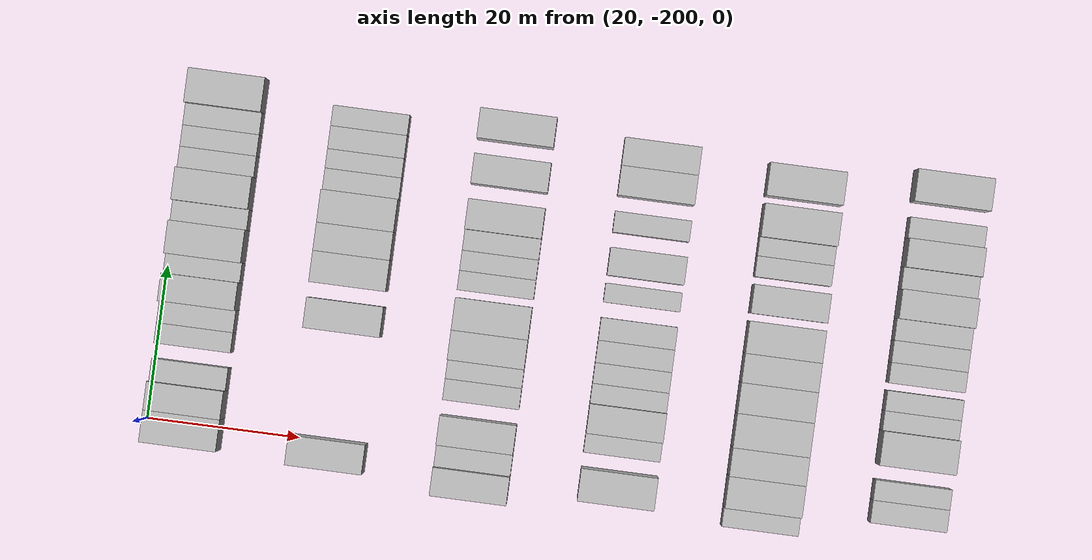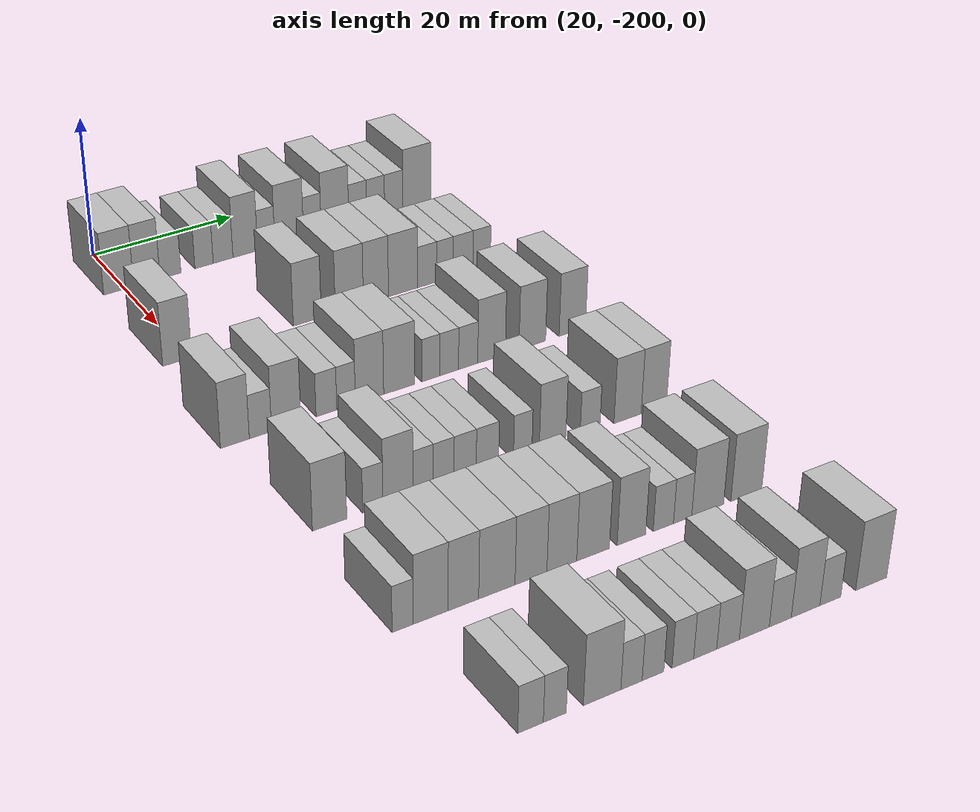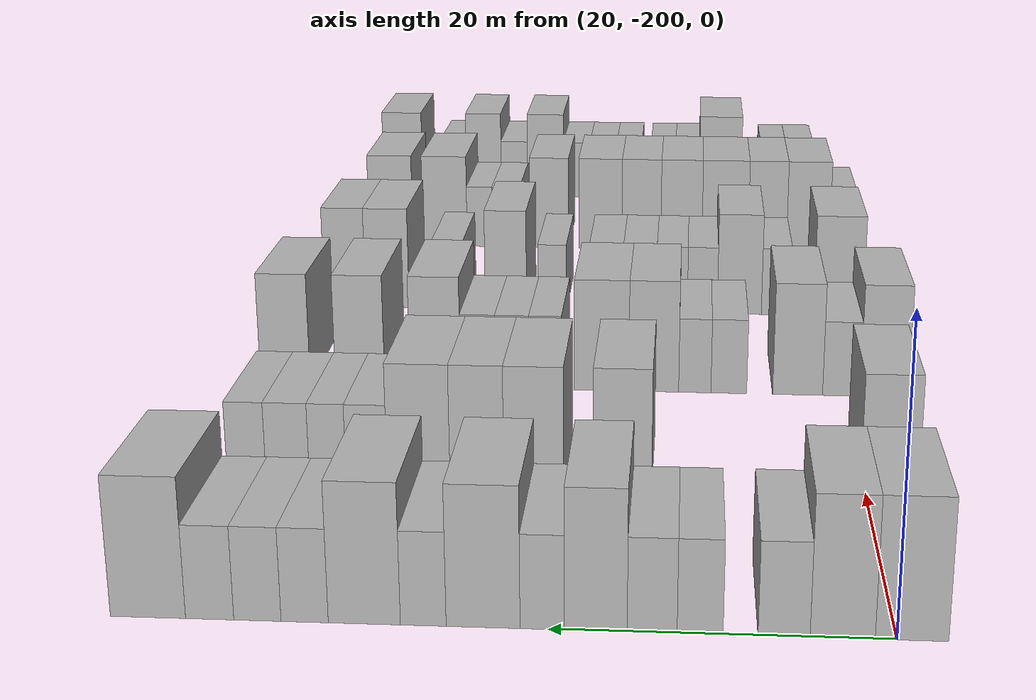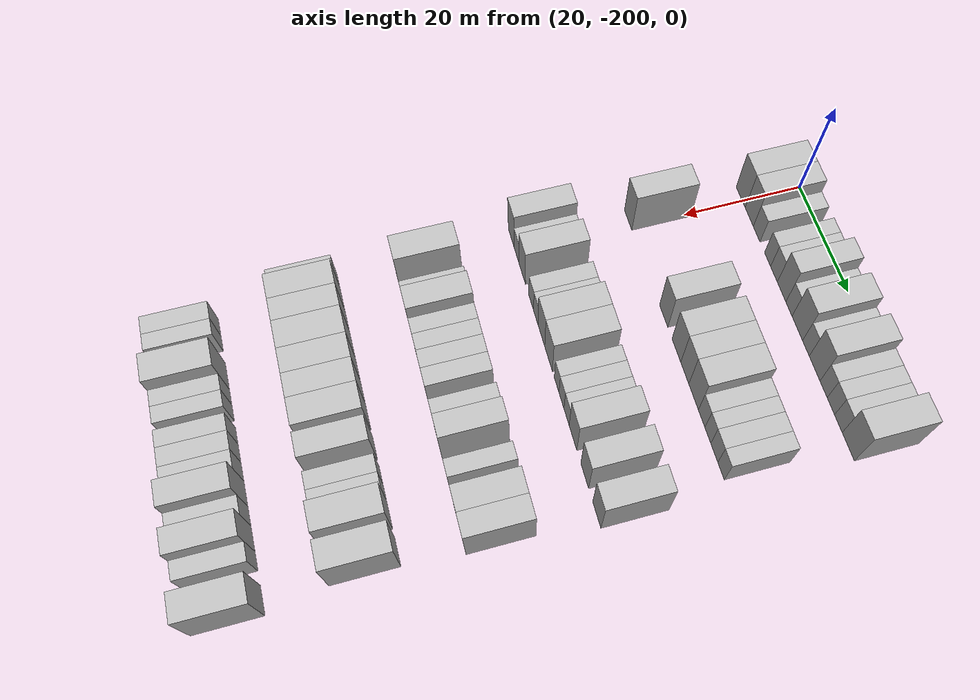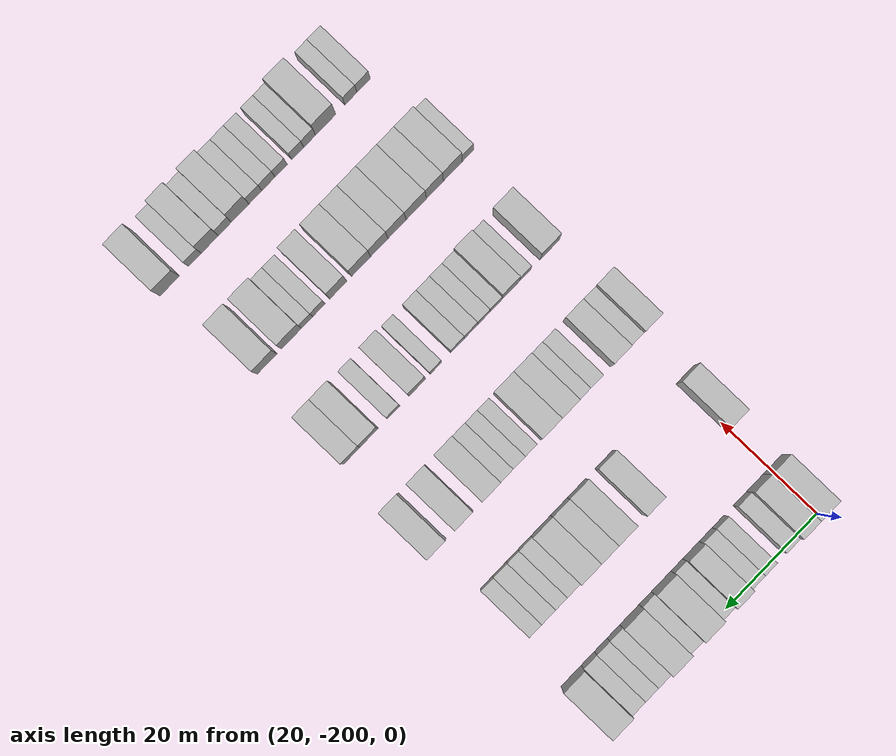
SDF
<sdf version="1.6">
 <world name="default">
  <model name="building_38">
   <static>1</static>
   <pose>25.0000 -200.8313 0 0.000000 0.000000 0.000000</pose>
   <link name="link">
    <pose>0 0 4.50 0 0 0</pose>
    <collision name="collision"><geometry><box><size>10.0000 4.1680 9.0000</size></box></geometry></collision>
    <visual name="visual">
     <cast_shadows>0</cast_shadows>
     <geometry><box><size>10.0000 4.1680 9.0000</size></box></geometry>
     <material>
      <script>
       <uri>model://HANNAS_wall/materials/scripts</uri>
       <uri>model://HANNAS_wall/materials/textures</uri>
       <name>vrc/HANNAS_wall</name>
      </script>
     </material>
    </visual>
   </link>
  </model>
  <model name="building_39">
   <static>1</static>
   <pose>25.0000 -196.8950 0 0.000000 0.000000 0.000000</pose>
   <link name="link">
    <pose>0 0 4.50 0 0 0</pose>
    <collision name="collision"><geometry><box><size>10.0000 3.7047 9.0000</size></box></geometry></collision>
    <visual name="visual">
     <cast_shadows>0</cast_shadows>
     <geometry><box><size>10.0000 3.7047 9.0000</size></box></geometry>
     <material>
      <script>
       <uri>model://HANNAS_wall/materials/scripts</uri>
       <uri>model://HANNAS_wall/materials/textures</uri>
       <name>vrc/HANNAS_wall</name>
      </script>
     </material>
    </visual>
   </link>
  </model>
  <model name="building_40">
   <static>1</static>
   <pose>25.0000 -193.5563 0 0.000000 0.000000 0.000000</pose>
   <link name="link">
    <pose>0 0 3.00 0 0 0</pose>
    <collision name="collision"><geometry><box><size>10.0000 2.9726 6.0000</size></box></geometry></collision>
    <visual name="visual">
     <cast_shadows>0</cast_shadows>
     <geometry><box><size>10.0000 2.9726 6.0000</size></box></geometry>
     <material>
      <script>
       <uri>model://HANNAS_wall/materials/scripts</uri>
       <uri>model://HANNAS_wall/materials/textures</uri>
       <name>vrc/HANNAS_wall</name>
      </script>
     </material>
    </visual>
   </link>
  </model>
  <model name="building_41">
   <static>1</static>
   <pose>25.0000 -188.7504 0 0.000000 0.000000 0.000000</pose>
   <link name="link">
    <pose>0 0 3.00 0 0 0</pose>
    <collision name="collision"><geometry><box><size>10.0000 2.6392 6.0000</size></box></geometry></collision>
    <visual name="visual">
     <cast_shadows>0</cast_shadows>
     <geometry><box><size>10.0000 2.6392 6.0000</size></box></geometry>
     <material>
      <script>
       <uri>model://HANNAS_wall/materials/scripts</uri>
       <uri>model://HANNAS_wall/materials/textures</uri>
       <name>vrc/HANNAS_wall</name>
      </script>
     </material>
    </visual>
   </link>
  </model>
  <model name="building_42">
   <static>1</static>
   <pose>25.0000 -185.9956 0 0.000000 0.000000 0.000000</pose>
   <link name="link">
    <pose>0 0 3.00 0 0 0</pose>
    <collision name="collision"><geometry><box><size>10.0000 2.8704 6.0000</size></box></geometry></collision>
    <visual name="visual">
     <cast_shadows>0</cast_shadows>
     <geometry><box><size>10.0000 2.8704 6.0000</size></box></geometry>
     <material>
      <script>
       <uri>model://HANNAS_wall/materials/scripts</uri>
       <uri>model://HANNAS_wall/materials/textures</uri>
       <name>vrc/HANNAS_wall</name>
      </script>
     </material>
    </visual>
   </link>
  </model>
  <model name="building_43">
   <static>1</static>
   <pose>25.0000 -182.7446 0 0.000000 0.000000 0.000000</pose>
   <link name="link">
    <pose>0 0 4.50 0 0 0</pose>
    <collision name="collision"><geometry><box><size>10.0000 3.6316 9.0000</size></box></geometry></collision>
    <visual name="visual">
     <cast_shadows>0</cast_shadows>
     <geometry><box><size>10.0000 3.6316 9.0000</size></box></geometry>
     <material>
      <script>
       <uri>model://HANNAS_wall/materials/scripts</uri>
       <uri>model://HANNAS_wall/materials/textures</uri>
       <name>vrc/HANNAS_wall</name>
      </script>
     </material>
    </visual>
   </link>
  </model>
  <model name="building_44">
   <static>1</static>
   <pose>25.0000 -179.6459 0 0.000000 0.000000 0.000000</pose>
   <link name="link">
    <pose>0 0 3.00 0 0 0</pose>
    <collision name="collision"><geometry><box><size>10.0000 2.5658 6.0000</size></box></geometry></collision>
    <visual name="visual">
     <cast_shadows>0</cast_shadows>
     <geometry><box><size>10.0000 2.5658 6.0000</size></box></geometry>
     <material>
      <script>
       <uri>model://HANNAS_wall/materials/scripts</uri>
       <uri>model://HANNAS_wall/materials/textures</uri>
       <name>vrc/HANNAS_wall</name>
      </script>
     </material>
    </visual>
   </link>
  </model>
  <model name="building_45">
   <static>1</static>
   <pose>25.0000 -176.2125 0 0.000000 0.000000 0.000000</pose>
   <link name="link">
    <pose>0 0 4.50 0 0 0</pose>
    <collision name="collision"><geometry><box><size>10.0000 4.3010 9.0000</size></box></geometry></collision>
    <visual name="visual">
     <cast_shadows>0</cast_shadows>
     <geometry><box><size>10.0000 4.3010 9.0000</size></box></geometry>
     <material>
      <script>
       <uri>model://HANNAS_wall/materials/scripts</uri>
       <uri>model://HANNAS_wall/materials/textures</uri>
       <name>vrc/HANNAS_wall</name>
      </script>
     </material>
    </visual>
   </link>
  </model>
  <model name="building_46">
   <static>1</static>
   <pose>25.0000 -172.7263 0 0.000000 0.000000 0.000000</pose>
   <link name="link">
    <pose>0 0 3.00 0 0 0</pose>
    <collision name="collision"><geometry><box><size>10.0000 2.6714 6.0000</size></box></geometry></collision>
    <visual name="visual">
     <cast_shadows>0</cast_shadows>
     <geometry><box><size>10.0000 2.6714 6.0000</size></box></geometry>
     <material>
      <script>
       <uri>model://HANNAS_wall/materials/scripts</uri>
       <uri>model://HANNAS_wall/materials/textures</uri>
       <name>vrc/HANNAS_wall</name>
      </script>
     </material>
    </visual>
   </link>
  </model>
  <model name="building_47">
   <static>1</static>
   <pose>25.0000 -169.2752 0 0.000000 0.000000 0.000000</pose>
   <link name="link">
    <pose>0 0 4.50 0 0 0</pose>
    <collision name="collision"><geometry><box><size>10.0000 4.2307 9.0000</size></box></geometry></collision>
    <visual name="visual">
     <cast_shadows>0</cast_shadows>
     <geometry><box><size>10.0000 4.2307 9.0000</size></box></geometry>
     <material>
      <script>
       <uri>model://HANNAS_wall/materials/scripts</uri>
       <uri>model://HANNAS_wall/materials/textures</uri>
       <name>vrc/HANNAS_wall</name>
      </script>
     </material>
    </visual>
   </link>
  </model>
  <model name="building_48">
   <static>1</static>
   <pose>25.0000 -165.7712 0 0.000000 0.000000 0.000000</pose>
   <link name="link">
    <pose>0 0 3.00 0 0 0</pose>
    <collision name="collision"><geometry><box><size>10.0000 2.7773 6.0000</size></box></geometry></collision>
    <visual name="visual">
     <cast_shadows>0</cast_shadows>
     <geometry><box><size>10.0000 2.7773 6.0000</size></box></geometry>
     <material>
      <script>
       <uri>model://HANNAS_wall/materials/scripts</uri>
       <uri>model://HANNAS_wall/materials/textures</uri>
       <name>vrc/HANNAS_wall</name>
      </script>
     </material>
    </visual>
   </link>
  </model>
  <model name="building_49">
   <static>1</static>
   <pose>25.0000 -162.9861 0 0.000000 0.000000 0.000000</pose>
   <link name="link">
    <pose>0 0 3.00 0 0 0</pose>
    <collision name="collision"><geometry><box><size>10.0000 2.7928 6.0000</size></box></geometry></collision>
    <visual name="visual">
     <cast_shadows>0</cast_shadows>
     <geometry><box><size>10.0000 2.7928 6.0000</size></box></geometry>
     <material>
      <script>
       <uri>model://HANNAS_wall/materials/scripts</uri>
       <uri>model://HANNAS_wall/materials/textures</uri>
       <name>vrc/HANNAS_wall</name>
      </script>
     </material>
    </visual>
   </link>
  </model>
  <model name="building_50">
   <static>1</static>
   <pose>25.0000 -160.1606 0 0.000000 0.000000 0.000000</pose>
   <link name="link">
    <pose>0 0 3.00 0 0 0</pose>
    <collision name="collision"><geometry><box><size>10.0000 2.8582 6.0000</size></box></geometry></collision>
    <visual name="visual">
     <cast_shadows>0</cast_shadows>
     <geometry><box><size>10.0000 2.8582 6.0000</size></box></geometry>
     <material>
      <script>
       <uri>model://HANNAS_wall/materials/scripts</uri>
       <uri>model://HANNAS_wall/materials/textures</uri>
       <name>vrc/HANNAS_wall</name>
      </script>
     </material>
    </visual>
   </link>
  </model>
  <model name="building_51">
   <static>1</static>
   <pose>25.0000 -156.4963 0 0.000000 0.000000 0.000000</pose>
   <link name="link">
    <pose>0 0 4.50 0 0 0</pose>
    <collision name="collision"><geometry><box><size>10.0000 4.4705 9.0000</size></box></geometry></collision>
    <visual name="visual">
     <cast_shadows>0</cast_shadows>
     <geometry><box><size>10.0000 4.4705 9.0000</size></box></geometry>
     <material>
      <script>
       <uri>model://HANNAS_wall/materials/scripts</uri>
       <uri>model://HANNAS_wall/materials/textures</uri>
       <name>vrc/HANNAS_wall</name>
      </script>
     </material>
    </visual>
   </link>
  </model>
  <model name="building_222">
   <static>1</static>
   <pose>44.0000 -201.4409 0 0.000000 0.000000 0.000000</pose>
   <link name="link">
    <pose>0 0 4.50 0 0 0</pose>
    <collision name="collision"><geometry><box><size>10.0000 3.8786 9.0000</size></box></geometry></collision>
    <visual name="visual">
     <cast_shadows>0</cast_shadows>
     <geometry><box><size>10.0000 3.8786 9.0000</size></box></geometry>
     <material>
      <script>
       <uri>model://HANNAS_wall/materials/scripts</uri>
       <uri>model://HANNAS_wall/materials/textures</uri>
       <name>vrc/HANNAS_wall</name>
      </script>
     </material>
    </visual>
   </link>
  </model>
  <model name="building_223">
   <static>1</static>
   <pose>44.0000 -183.5485 0 0.000000 0.000000 0.000000</pose>
   <link name="link">
    <pose>0 0 4.50 0 0 0</pose>
    <collision name="collision"><geometry><box><size>10.0000 3.9687 9.0000</size></box></geometry></collision>
    <visual name="visual">
     <cast_shadows>0</cast_shadows>
     <geometry><box><size>10.0000 3.9687 9.0000</size></box></geometry>
     <material>
      <script>
       <uri>model://HANNAS_wall/materials/scripts</uri>
       <uri>model://HANNAS_wall/materials/textures</uri>
       <name>vrc/HANNAS_wall</name>
      </script>
     </material>
    </visual>
   </link>
  </model>
  <model name="building_224">
   <static>1</static>
   <pose>44.0000 -177.5372 0 0.000000 0.000000 0.000000</pose>
   <link name="link">
    <pose>0 0 4.50 0 0 0</pose>
    <collision name="collision"><geometry><box><size>10.0000 4.0538 9.0000</size></box></geometry></collision>
    <visual name="visual">
     <cast_shadows>0</cast_shadows>
     <geometry><box><size>10.0000 4.0538 9.0000</size></box></geometry>
     <material>
      <script>
       <uri>model://HANNAS_wall/materials/scripts</uri>
       <uri>model://HANNAS_wall/materials/textures</uri>
       <name>vrc/HANNAS_wall</name>
      </script>
     </material>
    </visual>
   </link>
  </model>
  <model name="building_225">
   <static>1</static>
   <pose>44.0000 -173.6752 0 0.000000 0.000000 0.000000</pose>
   <link name="link">
    <pose>0 0 4.50 0 0 0</pose>
    <collision name="collision"><geometry><box><size>10.0000 3.6703 9.0000</size></box></geometry></collision>
    <visual name="visual">
     <cast_shadows>0</cast_shadows>
     <geometry><box><size>10.0000 3.6703 9.0000</size></box></geometry>
     <material>
      <script>
       <uri>model://HANNAS_wall/materials/scripts</uri>
       <uri>model://HANNAS_wall/materials/textures</uri>
       <name>vrc/HANNAS_wall</name>
      </script>
     </material>
    </visual>
   </link>
  </model>
  <model name="building_226">
   <static>1</static>
   <pose>44.0000 -169.6925 0 0.000000 0.000000 0.000000</pose>
   <link name="link">
    <pose>0 0 4.50 0 0 0</pose>
    <collision name="collision"><geometry><box><size>10.0000 4.2952 9.0000</size></box></geometry></collision>
    <visual name="visual">
     <cast_shadows>0</cast_shadows>
     <geometry><box><size>10.0000 4.2952 9.0000</size></box></geometry>
     <material>
      <script>
       <uri>model://HANNAS_wall/materials/scripts</uri>
       <uri>model://HANNAS_wall/materials/textures</uri>
       <name>vrc/HANNAS_wall</name>
      </script>
     </material>
    </visual>
   </link>
  </model>
  <model name="building_227">
   <static>1</static>
   <pose>44.0000 -166.1283 0 0.000000 0.000000 0.000000</pose>
   <link name="link">
    <pose>0 0 3.00 0 0 0</pose>
    <collision name="collision"><geometry><box><size>10.0000 2.8332 6.0000</size></box></geometry></collision>
    <visual name="visual">
     <cast_shadows>0</cast_shadows>
     <geometry><box><size>10.0000 2.8332 6.0000</size></box></geometry>
     <material>
      <script>
       <uri>model://HANNAS_wall/materials/scripts</uri>
       <uri>model://HANNAS_wall/materials/textures</uri>
       <name>vrc/HANNAS_wall</name>
      </script>
     </material>
    </visual>
   </link>
  </model>
  <model name="building_228">
   <static>1</static>
   <pose>44.0000 -163.4466 0 0.000000 0.000000 0.000000</pose>
   <link name="link">
    <pose>0 0 3.00 0 0 0</pose>
    <collision name="collision"><geometry><box><size>10.0000 2.5301 6.0000</size></box></geometry></collision>
    <visual name="visual">
     <cast_shadows>0</cast_shadows>
     <geometry><box><size>10.0000 2.5301 6.0000</size></box></geometry>
     <material>
      <script>
       <uri>model://HANNAS_wall/materials/scripts</uri>
       <uri>model://HANNAS_wall/materials/textures</uri>
       <name>vrc/HANNAS_wall</name>
      </script>
     </material>
    </visual>
   </link>
  </model>
  <model name="building_229">
   <static>1</static>
   <pose>44.0000 -160.6817 0 0.000000 0.000000 0.000000</pose>
   <link name="link">
    <pose>0 0 3.00 0 0 0</pose>
    <collision name="collision"><geometry><box><size>10.0000 2.9997 6.0000</size></box></geometry></collision>
    <visual name="visual">
     <cast_shadows>0</cast_shadows>
     <geometry><box><size>10.0000 2.9997 6.0000</size></box></geometry>
     <material>
      <script>
       <uri>model://HANNAS_wall/materials/scripts</uri>
       <uri>model://HANNAS_wall/materials/textures</uri>
       <name>vrc/HANNAS_wall</name>
      </script>
     </material>
    </visual>
   </link>
  </model>
  <model name="building_230">
   <static>1</static>
   <pose>44.0000 -157.8418 0 0.000000 0.000000 0.000000</pose>
   <link name="link">
    <pose>0 0 3.00 0 0 0</pose>
    <collision name="collision"><geometry><box><size>10.0000 2.6801 6.0000</size></box></geometry></collision>
    <visual name="visual">
     <cast_shadows>0</cast_shadows>
     <geometry><box><size>10.0000 2.6801 6.0000</size></box></geometry>
     <material>
      <script>
       <uri>model://HANNAS_wall/materials/scripts</uri>
       <uri>model://HANNAS_wall/materials/textures</uri>
       <name>vrc/HANNAS_wall</name>
      </script>
     </material>
    </visual>
   </link>
  </model>
  <model name="building_383">
   <static>1</static>
   <pose>63.0000 -203.0186 0 0.000000 0.000000 0.000000</pose>
   <link name="link">
    <pose>0 0 4.50 0 0 0</pose>
    <collision name="collision"><geometry><box><size>10.0000 3.6985 9.0000</size></box></geometry></collision>
    <visual name="visual">
     <cast_shadows>0</cast_shadows>
     <geometry><box><size>10.0000 3.6985 9.0000</size></box></geometry>
     <material>
      <script>
       <uri>model://HANNAS_wall/materials/scripts</uri>
       <uri>model://HANNAS_wall/materials/textures</uri>
       <name>vrc/HANNAS_wall</name>
      </script>
     </material>
    </visual>
   </link>
  </model>
  <model name="building_384">
   <static>1</static>
   <pose>63.0000 -199.7264 0 0.000000 0.000000 0.000000</pose>
   <link name="link">
    <pose>0 0 3.00 0 0 0</pose>
    <collision name="collision"><geometry><box><size>10.0000 2.8858 6.0000</size></box></geometry></collision>
    <visual name="visual">
     <cast_shadows>0</cast_shadows>
     <geometry><box><size>10.0000 2.8858 6.0000</size></box></geometry>
     <material>
      <script>
       <uri>model://HANNAS_wall/materials/scripts</uri>
       <uri>model://HANNAS_wall/materials/textures</uri>
       <name>vrc/HANNAS_wall</name>
      </script>
     </material>
    </visual>
   </link>
  </model>
  <model name="building_385">
   <static>1</static>
   <pose>63.0000 -196.3657 0 0.000000 0.000000 0.000000</pose>
   <link name="link">
    <pose>0 0 4.50 0 0 0</pose>
    <collision name="collision"><geometry><box><size>10.0000 3.8356 9.0000</size></box></geometry></collision>
    <visual name="visual">
     <cast_shadows>0</cast_shadows>
     <geometry><box><size>10.0000 3.8356 9.0000</size></box></geometry>
     <material>
      <script>
       <uri>model://HANNAS_wall/materials/scripts</uri>
       <uri>model://HANNAS_wall/materials/textures</uri>
       <name>vrc/HANNAS_wall</name>
      </script>
     </material>
    </visual>
   </link>
  </model>
  <model name="building_386">
   <static>1</static>
   <pose>63.0000 -191.0683 0 0.000000 0.000000 0.000000</pose>
   <link name="link">
    <pose>0 0 3.00 0 0 0</pose>
    <collision name="collision"><geometry><box><size>10.0000 2.7593 6.0000</size></box></geometry></collision>
    <visual name="visual">
     <cast_shadows>0</cast_shadows>
     <geometry><box><size>10.0000 2.7593 6.0000</size></box></geometry>
     <material>
      <script>
       <uri>model://HANNAS_wall/materials/scripts</uri>
       <uri>model://HANNAS_wall/materials/textures</uri>
       <name>vrc/HANNAS_wall</name>
      </script>
     </material>
    </visual>
   </link>
  </model>
  <model name="building_387">
   <static>1</static>
   <pose>63.0000 -188.4414 0 0.000000 0.000000 0.000000</pose>
   <link name="link">
    <pose>0 0 3.00 0 0 0</pose>
    <collision name="collision"><geometry><box><size>10.0000 2.4944 6.0000</size></box></geometry></collision>
    <visual name="visual">
     <cast_shadows>0</cast_shadows>
     <geometry><box><size>10.0000 2.4944 6.0000</size></box></geometry>
     <material>
      <script>
       <uri>model://HANNAS_wall/materials/scripts</uri>
       <uri>model://HANNAS_wall/materials/textures</uri>
       <name>vrc/HANNAS_wall</name>
      </script>
     </material>
    </visual>
   </link>
  </model>
  <model name="building_388">
   <static>1</static>
   <pose>63.0000 -185.2684 0 0.000000 0.000000 0.000000</pose>
   <link name="link">
    <pose>0 0 4.50 0 0 0</pose>
    <collision name="collision"><geometry><box><size>10.0000 3.8517 9.0000</size></box></geometry></collision>
    <visual name="visual">
     <cast_shadows>0</cast_shadows>
     <geometry><box><size>10.0000 3.8517 9.0000</size></box></geometry>
     <material>
      <script>
       <uri>model://HANNAS_wall/materials/scripts</uri>
       <uri>model://HANNAS_wall/materials/textures</uri>
       <name>vrc/HANNAS_wall</name>
      </script>
     </material>
    </visual>
   </link>
  </model>
  <model name="building_389">
   <static>1</static>
   <pose>63.0000 -181.2182 0 0.000000 0.000000 0.000000</pose>
   <link name="link">
    <pose>0 0 4.50 0 0 0</pose>
    <collision name="collision"><geometry><box><size>10.0000 4.2487 9.0000</size></box></geometry></collision>
    <visual name="visual">
     <cast_shadows>0</cast_shadows>
     <geometry><box><size>10.0000 4.2487 9.0000</size></box></geometry>
     <material>
      <script>
       <uri>model://HANNAS_wall/materials/scripts</uri>
       <uri>model://HANNAS_wall/materials/textures</uri>
       <name>vrc/HANNAS_wall</name>
      </script>
     </material>
    </visual>
   </link>
  </model>
  <model name="building_390">
   <static>1</static>
   <pose>63.0000 -176.8269 0 0.000000 0.000000 0.000000</pose>
   <link name="link">
    <pose>0 0 3.00 0 0 0</pose>
    <collision name="collision"><geometry><box><size>10.0000 2.5337 6.0000</size></box></geometry></collision>
    <visual name="visual">
     <cast_shadows>0</cast_shadows>
     <geometry><box><size>10.0000 2.5337 6.0000</size></box></geometry>
     <material>
      <script>
       <uri>model://HANNAS_wall/materials/scripts</uri>
       <uri>model://HANNAS_wall/materials/textures</uri>
       <name>vrc/HANNAS_wall</name>
      </script>
     </material>
    </visual>
   </link>
  </model>
  <model name="building_391">
   <static>1</static>
   <pose>63.0000 -174.2418 0 0.000000 0.000000 0.000000</pose>
   <link name="link">
    <pose>0 0 3.00 0 0 0</pose>
    <collision name="collision"><geometry><box><size>10.0000 2.6365 6.0000</size></box></geometry></collision>
    <visual name="visual">
     <cast_shadows>0</cast_shadows>
     <geometry><box><size>10.0000 2.6365 6.0000</size></box></geometry>
     <material>
      <script>
       <uri>model://HANNAS_wall/materials/scripts</uri>
       <uri>model://HANNAS_wall/materials/textures</uri>
       <name>vrc/HANNAS_wall</name>
      </script>
     </material>
    </visual>
   </link>
  </model>
  <model name="building_392">
   <static>1</static>
   <pose>63.0000 -171.5591 0 0.000000 0.000000 0.000000</pose>
   <link name="link">
    <pose>0 0 3.00 0 0 0</pose>
    <collision name="collision"><geometry><box><size>10.0000 2.7289 6.0000</size></box></geometry></collision>
    <visual name="visual">
     <cast_shadows>0</cast_shadows>
     <geometry><box><size>10.0000 2.7289 6.0000</size></box></geometry>
     <material>
      <script>
       <uri>model://HANNAS_wall/materials/scripts</uri>
       <uri>model://HANNAS_wall/materials/textures</uri>
       <name>vrc/HANNAS_wall</name>
      </script>
     </material>
    </visual>
   </link>
  </model>
  <model name="building_393">
   <static>1</static>
   <pose>63.0000 -168.2143 0 0.000000 0.000000 0.000000</pose>
   <link name="link">
    <pose>0 0 4.50 0 0 0</pose>
    <collision name="collision"><geometry><box><size>10.0000 3.9607 9.0000</size></box></geometry></collision>
    <visual name="visual">
     <cast_shadows>0</cast_shadows>
     <geometry><box><size>10.0000 3.9607 9.0000</size></box></geometry>
     <material>
      <script>
       <uri>model://HANNAS_wall/materials/scripts</uri>
       <uri>model://HANNAS_wall/materials/textures</uri>
       <name>vrc/HANNAS_wall</name>
      </script>
     </material>
    </visual>
   </link>
  </model>
  <model name="building_394">
   <static>1</static>
   <pose>63.0000 -162.2869 0 0.000000 0.000000 0.000000</pose>
   <link name="link">
    <pose>0 0 4.50 0 0 0</pose>
    <collision name="collision"><geometry><box><size>10.0000 3.8941 9.0000</size></box></geometry></collision>
    <visual name="visual">
     <cast_shadows>0</cast_shadows>
     <geometry><box><size>10.0000 3.8941 9.0000</size></box></geometry>
     <material>
      <script>
       <uri>model://HANNAS_wall/materials/scripts</uri>
       <uri>model://HANNAS_wall/materials/textures</uri>
       <name>vrc/HANNAS_wall</name>
      </script>
     </material>
    </visual>
   </link>
  </model>
  <model name="building_395">
   <static>1</static>
   <pose>63.0000 -156.3729 0 0.000000 0.000000 0.000000</pose>
   <link name="link">
    <pose>0 0 4.50 0 0 0</pose>
    <collision name="collision"><geometry><box><size>10.0000 3.9339 9.0000</size></box></geometry></collision>
    <visual name="visual">
     <cast_shadows>0</cast_shadows>
     <geometry><box><size>10.0000 3.9339 9.0000</size></box></geometry>
     <material>
      <script>
       <uri>model://HANNAS_wall/materials/scripts</uri>
       <uri>model://HANNAS_wall/materials/textures</uri>
       <name>vrc/HANNAS_wall</name>
      </script>
     </material>
    </visual>
   </link>
  </model>
  <model name="building_547">
   <static>1</static>
   <pose>82.0000 -200.9153 0 0.000000 0.000000 0.000000</pose>
   <link name="link">
    <pose>0 0 4.50 0 0 0</pose>
    <collision name="collision"><geometry><box><size>10.0000 4.2554 9.0000</size></box></geometry></collision>
    <visual name="visual">
     <cast_shadows>0</cast_shadows>
     <geometry><box><size>10.0000 4.2554 9.0000</size></box></geometry>
     <material>
      <script>
       <uri>model://HANNAS_wall/materials/scripts</uri>
       <uri>model://HANNAS_wall/materials/textures</uri>
       <name>vrc/HANNAS_wall</name>
      </script>
     </material>
    </visual>
   </link>
  </model>
  <model name="building_548">
   <static>1</static>
   <pose>82.0000 -195.5111 0 0.000000 0.000000 0.000000</pose>
   <link name="link">
    <pose>0 0 3.00 0 0 0</pose>
    <collision name="collision"><geometry><box><size>10.0000 2.5531 6.0000</size></box></geometry></collision>
    <visual name="visual">
     <cast_shadows>0</cast_shadows>
     <geometry><box><size>10.0000 2.5531 6.0000</size></box></geometry>
     <material>
      <script>
       <uri>model://HANNAS_wall/materials/scripts</uri>
       <uri>model://HANNAS_wall/materials/textures</uri>
       <name>vrc/HANNAS_wall</name>
      </script>
     </material>
    </visual>
   </link>
  </model>
  <model name="building_549">
   <static>1</static>
   <pose>82.0000 -192.3138 0 0.000000 0.000000 0.000000</pose>
   <link name="link">
    <pose>0 0 4.50 0 0 0</pose>
    <collision name="collision"><geometry><box><size>10.0000 3.8415 9.0000</size></box></geometry></collision>
    <visual name="visual">
     <cast_shadows>0</cast_shadows>
     <geometry><box><size>10.0000 3.8415 9.0000</size></box></geometry>
     <material>
      <script>
       <uri>model://HANNAS_wall/materials/scripts</uri>
       <uri>model://HANNAS_wall/materials/textures</uri>
       <name>vrc/HANNAS_wall</name>
      </script>
     </material>
    </visual>
   </link>
  </model>
  <model name="building_550">
   <static>1</static>
   <pose>82.0000 -189.0886 0 0.000000 0.000000 0.000000</pose>
   <link name="link">
    <pose>0 0 3.00 0 0 0</pose>
    <collision name="collision"><geometry><box><size>10.0000 2.6089 6.0000</size></box></geometry></collision>
    <visual name="visual">
     <cast_shadows>0</cast_shadows>
     <geometry><box><size>10.0000 2.6089 6.0000</size></box></geometry>
     <material>
      <script>
       <uri>model://HANNAS_wall/materials/scripts</uri>
       <uri>model://HANNAS_wall/materials/textures</uri>
       <name>vrc/HANNAS_wall</name>
      </script>
     </material>
    </visual>
   </link>
  </model>
  <model name="building_551">
   <static>1</static>
   <pose>82.0000 -186.4307 0 0.000000 0.000000 0.000000</pose>
   <link name="link">
    <pose>0 0 3.00 0 0 0</pose>
    <collision name="collision"><geometry><box><size>10.0000 2.7070 6.0000</size></box></geometry></collision>
    <visual name="visual">
     <cast_shadows>0</cast_shadows>
     <geometry><box><size>10.0000 2.7070 6.0000</size></box></geometry>
     <material>
      <script>
       <uri>model://HANNAS_wall/materials/scripts</uri>
       <uri>model://HANNAS_wall/materials/textures</uri>
       <name>vrc/HANNAS_wall</name>
      </script>
     </material>
    </visual>
   </link>
  </model>
  <model name="building_552">
   <static>1</static>
   <pose>82.0000 -183.6174 0 0.000000 0.000000 0.000000</pose>
   <link name="link">
    <pose>0 0 3.00 0 0 0</pose>
    <collision name="collision"><geometry><box><size>10.0000 2.9195 6.0000</size></box></geometry></collision>
    <visual name="visual">
     <cast_shadows>0</cast_shadows>
     <geometry><box><size>10.0000 2.9195 6.0000</size></box></geometry>
     <material>
      <script>
       <uri>model://HANNAS_wall/materials/scripts</uri>
       <uri>model://HANNAS_wall/materials/textures</uri>
       <name>vrc/HANNAS_wall</name>
      </script>
     </material>
    </visual>
   </link>
  </model>
  <model name="building_553">
   <static>1</static>
   <pose>82.0000 -180.6709 0 0.000000 0.000000 0.000000</pose>
   <link name="link">
    <pose>0 0 3.00 0 0 0</pose>
    <collision name="collision"><geometry><box><size>10.0000 2.9733 6.0000</size></box></geometry></collision>
    <visual name="visual">
     <cast_shadows>0</cast_shadows>
     <geometry><box><size>10.0000 2.9733 6.0000</size></box></geometry>
     <material>
      <script>
       <uri>model://HANNAS_wall/materials/scripts</uri>
       <uri>model://HANNAS_wall/materials/textures</uri>
       <name>vrc/HANNAS_wall</name>
      </script>
     </material>
    </visual>
   </link>
  </model>
  <model name="building_554">
   <static>1</static>
   <pose>82.0000 -175.9339 0 0.000000 0.000000 0.000000</pose>
   <link name="link">
    <pose>0 0 3.00 0 0 0</pose>
    <collision name="collision"><geometry><box><size>10.0000 2.5008 6.0000</size></box></geometry></collision>
    <visual name="visual">
     <cast_shadows>0</cast_shadows>
     <geometry><box><size>10.0000 2.5008 6.0000</size></box></geometry>
     <material>
      <script>
       <uri>model://HANNAS_wall/materials/scripts</uri>
       <uri>model://HANNAS_wall/materials/textures</uri>
       <name>vrc/HANNAS_wall</name>
      </script>
     </material>
    </visual>
   </link>
  </model>
  <model name="building_555">
   <static>1</static>
   <pose>82.0000 -171.8628 0 0.000000 0.000000 0.000000</pose>
   <link name="link">
    <pose>0 0 4.50 0 0 0</pose>
    <collision name="collision"><geometry><box><size>10.0000 3.6414 9.0000</size></box></geometry></collision>
    <visual name="visual">
     <cast_shadows>0</cast_shadows>
     <geometry><box><size>10.0000 3.6414 9.0000</size></box></geometry>
     <material>
      <script>
       <uri>model://HANNAS_wall/materials/scripts</uri>
       <uri>model://HANNAS_wall/materials/textures</uri>
       <name>vrc/HANNAS_wall</name>
      </script>
     </material>
    </visual>
   </link>
  </model>
  <model name="building_556">
   <static>1</static>
   <pose>82.0000 -166.6657 0 0.000000 0.000000 0.000000</pose>
   <link name="link">
    <pose>0 0 3.00 0 0 0</pose>
    <collision name="collision"><geometry><box><size>10.0000 2.7528 6.0000</size></box></geometry></collision>
    <visual name="visual">
     <cast_shadows>0</cast_shadows>
     <geometry><box><size>10.0000 2.7528 6.0000</size></box></geometry>
     <material>
      <script>
       <uri>model://HANNAS_wall/materials/scripts</uri>
       <uri>model://HANNAS_wall/materials/textures</uri>
       <name>vrc/HANNAS_wall</name>
      </script>
     </material>
    </visual>
   </link>
  </model>
  <model name="building_557">
   <static>1</static>
   <pose>82.0000 -161.3526 0 0.000000 0.000000 0.000000</pose>
   <link name="link">
    <pose>0 0 4.50 0 0 0</pose>
    <collision name="collision"><geometry><box><size>10.0000 3.8734 9.0000</size></box></geometry></collision>
    <visual name="visual">
     <cast_shadows>0</cast_shadows>
     <geometry><box><size>10.0000 3.8734 9.0000</size></box></geometry>
     <material>
      <script>
       <uri>model://HANNAS_wall/materials/scripts</uri>
       <uri>model://HANNAS_wall/materials/textures</uri>
       <name>vrc/HANNAS_wall</name>
      </script>
     </material>
    </visual>
   </link>
  </model>
  <model name="building_558">
   <static>1</static>
   <pose>82.0000 -157.5843 0 0.000000 0.000000 0.000000</pose>
   <link name="link">
    <pose>0 0 4.50 0 0 0</pose>
    <collision name="collision"><geometry><box><size>10.0000 3.6632 9.0000</size></box></geometry></collision>
    <visual name="visual">
     <cast_shadows>0</cast_shadows>
     <geometry><box><size>10.0000 3.6632 9.0000</size></box></geometry>
     <material>
      <script>
       <uri>model://HANNAS_wall/materials/scripts</uri>
       <uri>model://HANNAS_wall/materials/textures</uri>
       <name>vrc/HANNAS_wall</name>
      </script>
     </material>
    </visual>
   </link>
  </model>
  <model name="building_709">
   <static>1</static>
   <pose>101.0000 -202.7093 0 0.000000 0.000000 0.000000</pose>
   <link name="link">
    <pose>0 0 3.00 0 0 0</pose>
    <collision name="collision"><geometry><box><size>10.0000 2.5066 6.0000</size></box></geometry></collision>
    <visual name="visual">
     <cast_shadows>0</cast_shadows>
     <geometry><box><size>10.0000 2.5066 6.0000</size></box></geometry>
     <material>
      <script>
       <uri>model://HANNAS_wall/materials/scripts</uri>
       <uri>model://HANNAS_wall/materials/textures</uri>
       <name>vrc/HANNAS_wall</name>
      </script>
     </material>
    </visual>
   </link>
  </model>
  <model name="building_710">
   <static>1</static>
   <pose>101.0000 -199.3821 0 0.000000 0.000000 0.000000</pose>
   <link name="link">
    <pose>0 0 4.50 0 0 0</pose>
    <collision name="collision"><geometry><box><size>10.0000 4.1478 9.0000</size></box></geometry></collision>
    <visual name="visual">
     <cast_shadows>0</cast_shadows>
     <geometry><box><size>10.0000 4.1478 9.0000</size></box></geometry>
     <material>
      <script>
       <uri>model://HANNAS_wall/materials/scripts</uri>
       <uri>model://HANNAS_wall/materials/textures</uri>
       <name>vrc/HANNAS_wall</name>
      </script>
     </material>
    </visual>
   </link>
  </model>
  <model name="building_711">
   <static>1</static>
   <pose>101.0000 -195.4506 0 0.000000 0.000000 0.000000</pose>
   <link name="link">
    <pose>0 0 4.50 0 0 0</pose>
    <collision name="collision"><geometry><box><size>10.0000 3.7150 9.0000</size></box></geometry></collision>
    <visual name="visual">
     <cast_shadows>0</cast_shadows>
     <geometry><box><size>10.0000 3.7150 9.0000</size></box></geometry>
     <material>
      <script>
       <uri>model://HANNAS_wall/materials/scripts</uri>
       <uri>model://HANNAS_wall/materials/textures</uri>
       <name>vrc/HANNAS_wall</name>
      </script>
     </material>
    </visual>
   </link>
  </model>
  <model name="building_712">
   <static>1</static>
   <pose>101.0000 -191.3554 0 0.000000 0.000000 0.000000</pose>
   <link name="link">
    <pose>0 0 4.50 0 0 0</pose>
    <collision name="collision"><geometry><box><size>10.0000 4.4755 9.0000</size></box></geometry></collision>
    <visual name="visual">
     <cast_shadows>0</cast_shadows>
     <geometry><box><size>10.0000 4.4755 9.0000</size></box></geometry>
     <material>
      <script>
       <uri>model://HANNAS_wall/materials/scripts</uri>
       <uri>model://HANNAS_wall/materials/textures</uri>
       <name>vrc/HANNAS_wall</name>
      </script>
     </material>
    </visual>
   </link>
  </model>
  <model name="building_713">
   <static>1</static>
   <pose>101.0000 -187.1206 0 0.000000 0.000000 0.000000</pose>
   <link name="link">
    <pose>0 0 4.50 0 0 0</pose>
    <collision name="collision"><geometry><box><size>10.0000 3.9940 9.0000</size></box></geometry></collision>
    <visual name="visual">
     <cast_shadows>0</cast_shadows>
     <geometry><box><size>10.0000 3.9940 9.0000</size></box></geometry>
     <material>
      <script>
       <uri>model://HANNAS_wall/materials/scripts</uri>
       <uri>model://HANNAS_wall/materials/textures</uri>
       <name>vrc/HANNAS_wall</name>
      </script>
     </material>
    </visual>
   </link>
  </model>
  <model name="building_714">
   <static>1</static>
   <pose>101.0000 -183.2232 0 0.000000 0.000000 0.000000</pose>
   <link name="link">
    <pose>0 0 4.50 0 0 0</pose>
    <collision name="collision"><geometry><box><size>10.0000 3.8008 9.0000</size></box></geometry></collision>
    <visual name="visual">
     <cast_shadows>0</cast_shadows>
     <geometry><box><size>10.0000 3.8008 9.0000</size></box></geometry>
     <material>
      <script>
       <uri>model://HANNAS_wall/materials/scripts</uri>
       <uri>model://HANNAS_wall/materials/textures</uri>
       <name>vrc/HANNAS_wall</name>
      </script>
     </material>
    </visual>
   </link>
  </model>
  <model name="building_715">
   <static>1</static>
   <pose>101.0000 -179.2154 0 0.000000 0.000000 0.000000</pose>
   <link name="link">
    <pose>0 0 4.50 0 0 0</pose>
    <collision name="collision"><geometry><box><size>10.0000 4.2148 9.0000</size></box></geometry></collision>
    <visual name="visual">
     <cast_shadows>0</cast_shadows>
     <geometry><box><size>10.0000 4.2148 9.0000</size></box></geometry>
     <material>
      <script>
       <uri>model://HANNAS_wall/materials/scripts</uri>
       <uri>model://HANNAS_wall/materials/textures</uri>
       <name>vrc/HANNAS_wall</name>
      </script>
     </material>
    </visual>
   </link>
  </model>
  <model name="building_716">
   <static>1</static>
   <pose>101.0000 -174.2219 0 0.000000 0.000000 0.000000</pose>
   <link name="link">
    <pose>0 0 4.50 0 0 0</pose>
    <collision name="collision"><geometry><box><size>10.0000 3.7722 9.0000</size></box></geometry></collision>
    <visual name="visual">
     <cast_shadows>0</cast_shadows>
     <geometry><box><size>10.0000 3.7722 9.0000</size></box></geometry>
     <material>
      <script>
       <uri>model://HANNAS_wall/materials/scripts</uri>
       <uri>model://HANNAS_wall/materials/textures</uri>
       <name>vrc/HANNAS_wall</name>
      </script>
     </material>
    </visual>
   </link>
  </model>
  <model name="building_717">
   <static>1</static>
   <pose>101.0000 -169.9776 0 0.000000 0.000000 0.000000</pose>
   <link name="link">
    <pose>0 0 3.00 0 0 0</pose>
    <collision name="collision"><geometry><box><size>10.0000 2.7163 6.0000</size></box></geometry></collision>
    <visual name="visual">
     <cast_shadows>0</cast_shadows>
     <geometry><box><size>10.0000 2.7163 6.0000</size></box></geometry>
     <material>
      <script>
       <uri>model://HANNAS_wall/materials/scripts</uri>
       <uri>model://HANNAS_wall/materials/textures</uri>
       <name>vrc/HANNAS_wall</name>
      </script>
     </material>
    </visual>
   </link>
  </model>
  <model name="building_718">
   <static>1</static>
   <pose>101.0000 -167.3852 0 0.000000 0.000000 0.000000</pose>
   <link name="link">
    <pose>0 0 3.00 0 0 0</pose>
    <collision name="collision"><geometry><box><size>10.0000 2.4686 6.0000</size></box></geometry></collision>
    <visual name="visual">
     <cast_shadows>0</cast_shadows>
     <geometry><box><size>10.0000 2.4686 6.0000</size></box></geometry>
     <material>
      <script>
       <uri>model://HANNAS_wall/materials/scripts</uri>
       <uri>model://HANNAS_wall/materials/textures</uri>
       <name>vrc/HANNAS_wall</name>
      </script>
     </material>
    </visual>
   </link>
  </model>
  <model name="building_719">
   <static>1</static>
   <pose>101.0000 -163.9750 0 0.000000 0.000000 0.000000</pose>
   <link name="link">
    <pose>0 0 4.50 0 0 0</pose>
    <collision name="collision"><geometry><box><size>10.0000 4.3517 9.0000</size></box></geometry></collision>
    <visual name="visual">
     <cast_shadows>0</cast_shadows>
     <geometry><box><size>10.0000 4.3517 9.0000</size></box></geometry>
     <material>
      <script>
       <uri>model://HANNAS_wall/materials/scripts</uri>
       <uri>model://HANNAS_wall/materials/textures</uri>
       <name>vrc/HANNAS_wall</name>
      </script>
     </material>
    </visual>
   </link>
  </model>
  <model name="building_720">
   <static>1</static>
   <pose>101.0000 -158.6429 0 0.000000 0.000000 0.000000</pose>
   <link name="link">
    <pose>0 0 4.50 0 0 0</pose>
    <collision name="collision"><geometry><box><size>10.0000 4.3124 9.0000</size></box></geometry></collision>
    <visual name="visual">
     <cast_shadows>0</cast_shadows>
     <geometry><box><size>10.0000 4.3124 9.0000</size></box></geometry>
     <material>
      <script>
       <uri>model://HANNAS_wall/materials/scripts</uri>
       <uri>model://HANNAS_wall/materials/textures</uri>
       <name>vrc/HANNAS_wall</name>
      </script>
     </material>
    </visual>
   </link>
  </model>
  <model name="building_881">
   <static>1</static>
   <pose>120.0000 -199.4857 0 0.000000 0.000000 0.000000</pose>
   <link name="link">
    <pose>0 0 3.00 0 0 0</pose>
    <collision name="collision"><geometry><box><size>10.0000 2.9401 6.0000</size></box></geometry></collision>
    <visual name="visual">
     <cast_shadows>0</cast_shadows>
     <geometry><box><size>10.0000 2.9401 6.0000</size></box></geometry>
     <material>
      <script>
       <uri>model://HANNAS_wall/materials/scripts</uri>
       <uri>model://HANNAS_wall/materials/textures</uri>
       <name>vrc/HANNAS_wall</name>
      </script>
     </material>
    </visual>
   </link>
  </model>
  <model name="building_882">
   <static>1</static>
   <pose>120.0000 -196.6877 0 0.000000 0.000000 0.000000</pose>
   <link name="link">
    <pose>0 0 3.00 0 0 0</pose>
    <collision name="collision"><geometry><box><size>10.0000 2.6560 6.0000</size></box></geometry></collision>
    <visual name="visual">
     <cast_shadows>0</cast_shadows>
     <geometry><box><size>10.0000 2.6560 6.0000</size></box></geometry>
     <material>
      <script>
       <uri>model://HANNAS_wall/materials/scripts</uri>
       <uri>model://HANNAS_wall/materials/textures</uri>
       <name>vrc/HANNAS_wall</name>
      </script>
     </material>
    </visual>
   </link>
  </model>
  <model name="building_883">
   <static>1</static>
   <pose>120.0000 -191.1308 0 0.000000 0.000000 0.000000</pose>
   <link name="link">
    <pose>0 0 4.50 0 0 0</pose>
    <collision name="collision"><geometry><box><size>10.0000 4.4579 9.0000</size></box></geometry></collision>
    <visual name="visual">
     <cast_shadows>0</cast_shadows>
     <geometry><box><size>10.0000 4.4579 9.0000</size></box></geometry>
     <material>
      <script>
       <uri>model://HANNAS_wall/materials/scripts</uri>
       <uri>model://HANNAS_wall/materials/textures</uri>
       <name>vrc/HANNAS_wall</name>
      </script>
     </material>
    </visual>
   </link>
  </model>
  <model name="building_884">
   <static>1</static>
   <pose>120.0000 -187.6187 0 0.000000 0.000000 0.000000</pose>
   <link name="link">
    <pose>0 0 3.00 0 0 0</pose>
    <collision name="collision"><geometry><box><size>10.0000 2.5663 6.0000</size></box></geometry></collision>
    <visual name="visual">
     <cast_shadows>0</cast_shadows>
     <geometry><box><size>10.0000 2.5663 6.0000</size></box></geometry>
     <material>
      <script>
       <uri>model://HANNAS_wall/materials/scripts</uri>
       <uri>model://HANNAS_wall/materials/textures</uri>
       <name>vrc/HANNAS_wall</name>
      </script>
     </material>
    </visual>
   </link>
  </model>
  <model name="building_885">
   <static>1</static>
   <pose>120.0000 -185.0142 0 0.000000 0.000000 0.000000</pose>
   <link name="link">
    <pose>0 0 3.00 0 0 0</pose>
    <collision name="collision"><geometry><box><size>10.0000 2.6426 6.0000</size></box></geometry></collision>
    <visual name="visual">
     <cast_shadows>0</cast_shadows>
     <geometry><box><size>10.0000 2.6426 6.0000</size></box></geometry>
     <material>
      <script>
       <uri>model://HANNAS_wall/materials/scripts</uri>
       <uri>model://HANNAS_wall/materials/textures</uri>
       <name>vrc/HANNAS_wall</name>
      </script>
     </material>
    </visual>
   </link>
  </model>
  <model name="building_886">
   <static>1</static>
   <pose>120.0000 -181.3558 0 0.000000 0.000000 0.000000</pose>
   <link name="link">
    <pose>0 0 3.00 0 0 0</pose>
    <collision name="collision"><geometry><box><size>10.0000 2.6744 6.0000</size></box></geometry></collision>
    <visual name="visual">
     <cast_shadows>0</cast_shadows>
     <geometry><box><size>10.0000 2.6744 6.0000</size></box></geometry>
     <material>
      <script>
       <uri>model://HANNAS_wall/materials/scripts</uri>
       <uri>model://HANNAS_wall/materials/textures</uri>
       <name>vrc/HANNAS_wall</name>
      </script>
     </material>
    </visual>
   </link>
  </model>
  <model name="building_887">
   <static>1</static>
   <pose>120.0000 -178.5735 0 0.000000 0.000000 0.000000</pose>
   <link name="link">
    <pose>0 0 3.00 0 0 0</pose>
    <collision name="collision"><geometry><box><size>10.0000 2.8901 6.0000</size></box></geometry></collision>
    <visual name="visual">
     <cast_shadows>0</cast_shadows>
     <geometry><box><size>10.0000 2.8901 6.0000</size></box></geometry>
     <material>
      <script>
       <uri>model://HANNAS_wall/materials/scripts</uri>
       <uri>model://HANNAS_wall/materials/textures</uri>
       <name>vrc/HANNAS_wall</name>
      </script>
     </material>
    </visual>
   </link>
  </model>
  <model name="building_888">
   <static>1</static>
   <pose>120.0000 -175.7039 0 0.000000 0.000000 0.000000</pose>
   <link name="link">
    <pose>0 0 3.00 0 0 0</pose>
    <collision name="collision"><geometry><box><size>10.0000 2.8492 6.0000</size></box></geometry></collision>
    <visual name="visual">
     <cast_shadows>0</cast_shadows>
     <geometry><box><size>10.0000 2.8492 6.0000</size></box></geometry>
     <material>
      <script>
       <uri>model://HANNAS_wall/materials/scripts</uri>
       <uri>model://HANNAS_wall/materials/textures</uri>
       <name>vrc/HANNAS_wall</name>
      </script>
     </material>
    </visual>
   </link>
  </model>
  <model name="building_889">
   <static>1</static>
   <pose>120.0000 -172.3566 0 0.000000 0.000000 0.000000</pose>
   <link name="link">
    <pose>0 0 4.50 0 0 0</pose>
    <collision name="collision"><geometry><box><size>10.0000 3.8453 9.0000</size></box></geometry></collision>
    <visual name="visual">
     <cast_shadows>0</cast_shadows>
     <geometry><box><size>10.0000 3.8453 9.0000</size></box></geometry>
     <material>
      <script>
       <uri>model://HANNAS_wall/materials/scripts</uri>
       <uri>model://HANNAS_wall/materials/textures</uri>
       <name>vrc/HANNAS_wall</name>
      </script>
     </material>
    </visual>
   </link>
  </model>
  <model name="building_890">
   <static>1</static>
   <pose>120.0000 -169.0056 0 0.000000 0.000000 0.000000</pose>
   <link name="link">
    <pose>0 0 3.00 0 0 0</pose>
    <collision name="collision"><geometry><box><size>10.0000 2.8567 6.0000</size></box></geometry></collision>
    <visual name="visual">
     <cast_shadows>0</cast_shadows>
     <geometry><box><size>10.0000 2.8567 6.0000</size></box></geometry>
     <material>
      <script>
       <uri>model://HANNAS_wall/materials/scripts</uri>
       <uri>model://HANNAS_wall/materials/textures</uri>
       <name>vrc/HANNAS_wall</name>
      </script>
     </material>
    </visual>
   </link>
  </model>
  <model name="building_891">
   <static>1</static>
   <pose>120.0000 -165.6980 0 0.000000 0.000000 0.000000</pose>
   <link name="link">
    <pose>0 0 4.50 0 0 0</pose>
    <collision name="collision"><geometry><box><size>10.0000 3.7585 9.0000</size></box></geometry></collision>
    <visual name="visual">
     <cast_shadows>0</cast_shadows>
     <geometry><box><size>10.0000 3.7585 9.0000</size></box></geometry>
     <material>
      <script>
       <uri>model://HANNAS_wall/materials/scripts</uri>
       <uri>model://HANNAS_wall/materials/textures</uri>
       <name>vrc/HANNAS_wall</name>
      </script>
     </material>
    </visual>
   </link>
  </model>
  <model name="building_892">
   <static>1</static>
   <pose>120.0000 -162.4241 0 0.000000 0.000000 0.000000</pose>
   <link name="link">
    <pose>0 0 3.00 0 0 0</pose>
    <collision name="collision"><geometry><box><size>10.0000 2.7895 6.0000</size></box></geometry></collision>
    <visual name="visual">
     <cast_shadows>0</cast_shadows>
     <geometry><box><size>10.0000 2.7895 6.0000</size></box></geometry>
     <material>
      <script>
       <uri>model://HANNAS_wall/materials/scripts</uri>
       <uri>model://HANNAS_wall/materials/textures</uri>
       <name>vrc/HANNAS_wall</name>
      </script>
     </material>
    </visual>
   </link>
  </model>
  <model name="building_893">
   <static>1</static>
   <pose>120.0000 -156.9193 0 0.000000 0.000000 0.000000</pose>
   <link name="link">
    <pose>0 0 4.50 0 0 0</pose>
    <collision name="collision"><geometry><box><size>10.0000 4.2200 9.0000</size></box></geometry></collision>
    <visual name="visual">
     <cast_shadows>0</cast_shadows>
     <geometry><box><size>10.0000 4.2200 9.0000</size></box></geometry>
     <material>
      <script>
       <uri>model://HANNAS_wall/materials/scripts</uri>
       <uri>model://HANNAS_wall/materials/textures</uri>
       <name>vrc/HANNAS_wall</name>
      </script>
     </material>
    </visual>
   </link>
  </model>
 </world>
</sdf>
